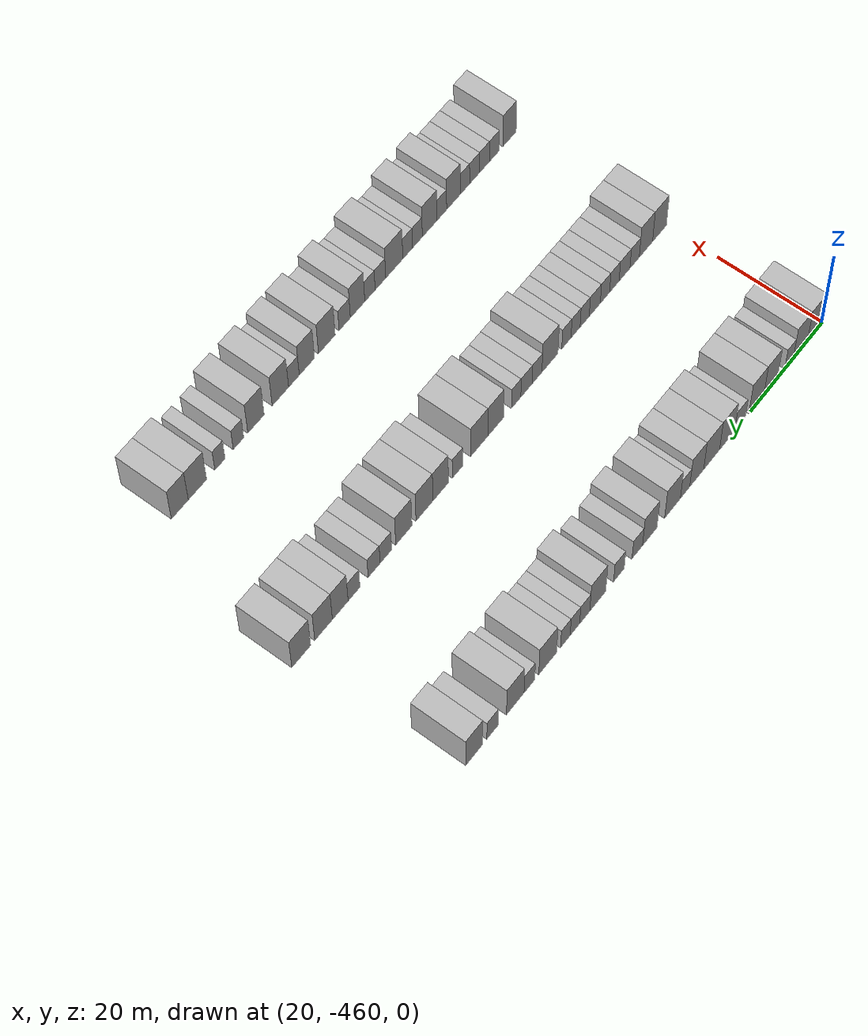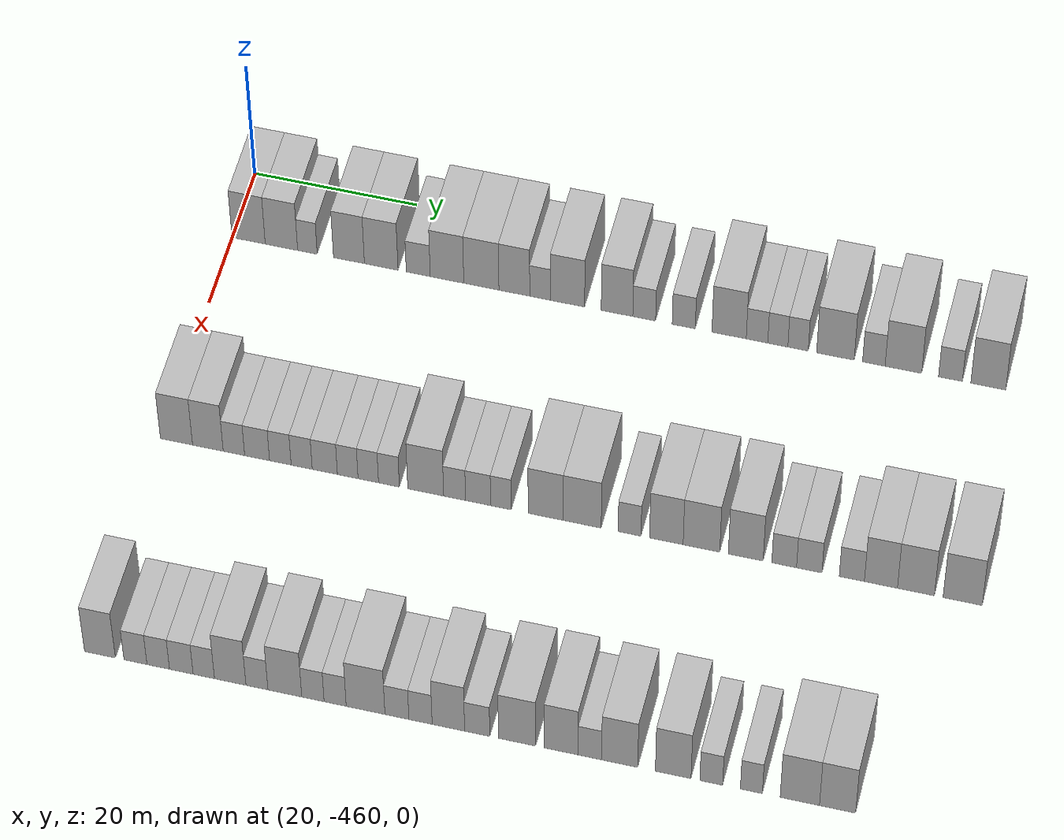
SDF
<sdf version="1.6">
 <world name="default">
  <model name="building_1">
   <static>1</static>
   <pose>25.0000 -457.9565 0 0.000000 0.000000 0.000000</pose>
   <link name="link">
    <pose>0 0 4.50 0 0 0</pose>
    <collision name="collision"><geometry><box><size>10.0000 4.0869 9.0000</size></box></geometry></collision>
    <visual name="visual">
     <cast_shadows>0</cast_shadows>
     <geometry><box><size>10.0000 4.0869 9.0000</size></box></geometry>
     <material>
      <script>
       <uri>model://HANNAS_wall/materials/scripts</uri>
       <uri>model://HANNAS_wall/materials/textures</uri>
       <name>vrc/HANNAS_wall</name>
      </script>
     </material>
    </visual>
   </link>
  </model>
  <model name="building_2">
   <static>1</static>
   <pose>25.0000 -453.9187 0 0.000000 0.000000 0.000000</pose>
   <link name="link">
    <pose>0 0 4.50 0 0 0</pose>
    <collision name="collision"><geometry><box><size>10.0000 3.9887 9.0000</size></box></geometry></collision>
    <visual name="visual">
     <cast_shadows>0</cast_shadows>
     <geometry><box><size>10.0000 3.9887 9.0000</size></box></geometry>
     <material>
      <script>
       <uri>model://HANNAS_wall/materials/scripts</uri>
       <uri>model://HANNAS_wall/materials/textures</uri>
       <name>vrc/HANNAS_wall</name>
      </script>
     </material>
    </visual>
   </link>
  </model>
  <model name="building_3">
   <static>1</static>
   <pose>25.0000 -450.7222 0 0.000000 0.000000 0.000000</pose>
   <link name="link">
    <pose>0 0 3.00 0 0 0</pose>
    <collision name="collision"><geometry><box><size>10.0000 2.4043 6.0000</size></box></geometry></collision>
    <visual name="visual">
     <cast_shadows>0</cast_shadows>
     <geometry><box><size>10.0000 2.4043 6.0000</size></box></geometry>
     <material>
      <script>
       <uri>model://HANNAS_wall/materials/scripts</uri>
       <uri>model://HANNAS_wall/materials/textures</uri>
       <name>vrc/HANNAS_wall</name>
      </script>
     </material>
    </visual>
   </link>
  </model>
  <model name="building_4">
   <static>1</static>
   <pose>25.0000 -445.6265 0 0.000000 0.000000 0.000000</pose>
   <link name="link">
    <pose>0 0 4.50 0 0 0</pose>
    <collision name="collision"><geometry><box><size>10.0000 3.7871 9.0000</size></box></geometry></collision>
    <visual name="visual">
     <cast_shadows>0</cast_shadows>
     <geometry><box><size>10.0000 3.7871 9.0000</size></box></geometry>
     <material>
      <script>
       <uri>model://HANNAS_wall/materials/scripts</uri>
       <uri>model://HANNAS_wall/materials/textures</uri>
       <name>vrc/HANNAS_wall</name>
      </script>
     </material>
    </visual>
   </link>
  </model>
  <model name="building_5">
   <static>1</static>
   <pose>25.0000 -441.6758 0 0.000000 0.000000 0.000000</pose>
   <link name="link">
    <pose>0 0 4.50 0 0 0</pose>
    <collision name="collision"><geometry><box><size>10.0000 4.1142 9.0000</size></box></geometry></collision>
    <visual name="visual">
     <cast_shadows>0</cast_shadows>
     <geometry><box><size>10.0000 4.1142 9.0000</size></box></geometry>
     <material>
      <script>
       <uri>model://HANNAS_wall/materials/scripts</uri>
       <uri>model://HANNAS_wall/materials/textures</uri>
       <name>vrc/HANNAS_wall</name>
      </script>
     </material>
    </visual>
   </link>
  </model>
  <model name="building_6">
   <static>1</static>
   <pose>25.0000 -437.1533 0 0.000000 0.000000 0.000000</pose>
   <link name="link">
    <pose>0 0 3.00 0 0 0</pose>
    <collision name="collision"><geometry><box><size>10.0000 2.9308 6.0000</size></box></geometry></collision>
    <visual name="visual">
     <cast_shadows>0</cast_shadows>
     <geometry><box><size>10.0000 2.9308 6.0000</size></box></geometry>
     <material>
      <script>
       <uri>model://HANNAS_wall/materials/scripts</uri>
       <uri>model://HANNAS_wall/materials/textures</uri>
       <name>vrc/HANNAS_wall</name>
      </script>
     </material>
    </visual>
   </link>
  </model>
  <model name="building_7">
   <static>1</static>
   <pose>25.0000 -433.6449 0 0.000000 0.000000 0.000000</pose>
   <link name="link">
    <pose>0 0 4.50 0 0 0</pose>
    <collision name="collision"><geometry><box><size>10.0000 4.0860 9.0000</size></box></geometry></collision>
    <visual name="visual">
     <cast_shadows>0</cast_shadows>
     <geometry><box><size>10.0000 4.0860 9.0000</size></box></geometry>
     <material>
      <script>
       <uri>model://HANNAS_wall/materials/scripts</uri>
       <uri>model://HANNAS_wall/materials/textures</uri>
       <name>vrc/HANNAS_wall</name>
      </script>
     </material>
    </visual>
   </link>
  </model>
  <model name="building_8">
   <static>1</static>
   <pose>25.0000 -429.4657 0 0.000000 0.000000 0.000000</pose>
   <link name="link">
    <pose>0 0 4.50 0 0 0</pose>
    <collision name="collision"><geometry><box><size>10.0000 4.2725 9.0000</size></box></geometry></collision>
    <visual name="visual">
     <cast_shadows>0</cast_shadows>
     <geometry><box><size>10.0000 4.2725 9.0000</size></box></geometry>
     <material>
      <script>
       <uri>model://HANNAS_wall/materials/scripts</uri>
       <uri>model://HANNAS_wall/materials/textures</uri>
       <name>vrc/HANNAS_wall</name>
      </script>
     </material>
    </visual>
   </link>
  </model>
  <model name="building_9">
   <static>1</static>
   <pose>25.0000 -425.4560 0 0.000000 0.000000 0.000000</pose>
   <link name="link">
    <pose>0 0 4.50 0 0 0</pose>
    <collision name="collision"><geometry><box><size>10.0000 3.7469 9.0000</size></box></geometry></collision>
    <visual name="visual">
     <cast_shadows>0</cast_shadows>
     <geometry><box><size>10.0000 3.7469 9.0000</size></box></geometry>
     <material>
      <script>
       <uri>model://HANNAS_wall/materials/scripts</uri>
       <uri>model://HANNAS_wall/materials/textures</uri>
       <name>vrc/HANNAS_wall</name>
      </script>
     </material>
    </visual>
   </link>
  </model>
  <model name="building_10">
   <static>1</static>
   <pose>25.0000 -422.3376 0 0.000000 0.000000 0.000000</pose>
   <link name="link">
    <pose>0 0 3.00 0 0 0</pose>
    <collision name="collision"><geometry><box><size>10.0000 2.4900 6.0000</size></box></geometry></collision>
    <visual name="visual">
     <cast_shadows>0</cast_shadows>
     <geometry><box><size>10.0000 2.4900 6.0000</size></box></geometry>
     <material>
      <script>
       <uri>model://HANNAS_wall/materials/scripts</uri>
       <uri>model://HANNAS_wall/materials/textures</uri>
       <name>vrc/HANNAS_wall</name>
      </script>
     </material>
    </visual>
   </link>
  </model>
  <model name="building_11">
   <static>1</static>
   <pose>25.0000 -419.0158 0 0.000000 0.000000 0.000000</pose>
   <link name="link">
    <pose>0 0 4.50 0 0 0</pose>
    <collision name="collision"><geometry><box><size>10.0000 4.1535 9.0000</size></box></geometry></collision>
    <visual name="visual">
     <cast_shadows>0</cast_shadows>
     <geometry><box><size>10.0000 4.1535 9.0000</size></box></geometry>
     <material>
      <script>
       <uri>model://HANNAS_wall/materials/scripts</uri>
       <uri>model://HANNAS_wall/materials/textures</uri>
       <name>vrc/HANNAS_wall</name>
      </script>
     </material>
    </visual>
   </link>
  </model>
  <model name="building_12">
   <static>1</static>
   <pose>25.0000 -413.0321 0 0.000000 0.000000 0.000000</pose>
   <link name="link">
    <pose>0 0 4.50 0 0 0</pose>
    <collision name="collision"><geometry><box><size>10.0000 3.8138 9.0000</size></box></geometry></collision>
    <visual name="visual">
     <cast_shadows>0</cast_shadows>
     <geometry><box><size>10.0000 3.8138 9.0000</size></box></geometry>
     <material>
      <script>
       <uri>model://HANNAS_wall/materials/scripts</uri>
       <uri>model://HANNAS_wall/materials/textures</uri>
       <name>vrc/HANNAS_wall</name>
      </script>
     </material>
    </visual>
   </link>
  </model>
  <model name="building_13">
   <static>1</static>
   <pose>25.0000 -409.7524 0 0.000000 0.000000 0.000000</pose>
   <link name="link">
    <pose>0 0 3.00 0 0 0</pose>
    <collision name="collision"><geometry><box><size>10.0000 2.7457 6.0000</size></box></geometry></collision>
    <visual name="visual">
     <cast_shadows>0</cast_shadows>
     <geometry><box><size>10.0000 2.7457 6.0000</size></box></geometry>
     <material>
      <script>
       <uri>model://HANNAS_wall/materials/scripts</uri>
       <uri>model://HANNAS_wall/materials/textures</uri>
       <name>vrc/HANNAS_wall</name>
      </script>
     </material>
    </visual>
   </link>
  </model>
  <model name="building_14">
   <static>1</static>
   <pose>25.0000 -404.9917 0 0.000000 0.000000 0.000000</pose>
   <link name="link">
    <pose>0 0 3.00 0 0 0</pose>
    <collision name="collision"><geometry><box><size>10.0000 2.7756 6.0000</size></box></geometry></collision>
    <visual name="visual">
     <cast_shadows>0</cast_shadows>
     <geometry><box><size>10.0000 2.7756 6.0000</size></box></geometry>
     <material>
      <script>
       <uri>model://HANNAS_wall/materials/scripts</uri>
       <uri>model://HANNAS_wall/materials/textures</uri>
       <name>vrc/HANNAS_wall</name>
      </script>
     </material>
    </visual>
   </link>
  </model>
  <model name="building_15">
   <static>1</static>
   <pose>25.0000 -399.5481 0 0.000000 0.000000 0.000000</pose>
   <link name="link">
    <pose>0 0 4.50 0 0 0</pose>
    <collision name="collision"><geometry><box><size>10.0000 4.1117 9.0000</size></box></geometry></collision>
    <visual name="visual">
     <cast_shadows>0</cast_shadows>
     <geometry><box><size>10.0000 4.1117 9.0000</size></box></geometry>
     <material>
      <script>
       <uri>model://HANNAS_wall/materials/scripts</uri>
       <uri>model://HANNAS_wall/materials/textures</uri>
       <name>vrc/HANNAS_wall</name>
      </script>
     </material>
    </visual>
   </link>
  </model>
  <model name="building_16">
   <static>1</static>
   <pose>25.0000 -396.2033 0 0.000000 0.000000 0.000000</pose>
   <link name="link">
    <pose>0 0 3.00 0 0 0</pose>
    <collision name="collision"><geometry><box><size>10.0000 2.5780 6.0000</size></box></geometry></collision>
    <visual name="visual">
     <cast_shadows>0</cast_shadows>
     <geometry><box><size>10.0000 2.5780 6.0000</size></box></geometry>
     <material>
      <script>
       <uri>model://HANNAS_wall/materials/scripts</uri>
       <uri>model://HANNAS_wall/materials/textures</uri>
       <name>vrc/HANNAS_wall</name>
      </script>
     </material>
    </visual>
   </link>
  </model>
  <model name="building_17">
   <static>1</static>
   <pose>25.0000 -393.7112 0 0.000000 0.000000 0.000000</pose>
   <link name="link">
    <pose>0 0 3.00 0 0 0</pose>
    <collision name="collision"><geometry><box><size>10.0000 2.4061 6.0000</size></box></geometry></collision>
    <visual name="visual">
     <cast_shadows>0</cast_shadows>
     <geometry><box><size>10.0000 2.4061 6.0000</size></box></geometry>
     <material>
      <script>
       <uri>model://HANNAS_wall/materials/scripts</uri>
       <uri>model://HANNAS_wall/materials/textures</uri>
       <name>vrc/HANNAS_wall</name>
      </script>
     </material>
    </visual>
   </link>
  </model>
  <model name="building_18">
   <static>1</static>
   <pose>25.0000 -391.2906 0 0.000000 0.000000 0.000000</pose>
   <link name="link">
    <pose>0 0 3.00 0 0 0</pose>
    <collision name="collision"><geometry><box><size>10.0000 2.4353 6.0000</size></box></geometry></collision>
    <visual name="visual">
     <cast_shadows>0</cast_shadows>
     <geometry><box><size>10.0000 2.4353 6.0000</size></box></geometry>
     <material>
      <script>
       <uri>model://HANNAS_wall/materials/scripts</uri>
       <uri>model://HANNAS_wall/materials/textures</uri>
       <name>vrc/HANNAS_wall</name>
      </script>
     </material>
    </visual>
   </link>
  </model>
  <model name="building_19">
   <static>1</static>
   <pose>25.0000 -386.8336 0 0.000000 0.000000 0.000000</pose>
   <link name="link">
    <pose>0 0 4.50 0 0 0</pose>
    <collision name="collision"><geometry><box><size>10.0000 4.4787 9.0000</size></box></geometry></collision>
    <visual name="visual">
     <cast_shadows>0</cast_shadows>
     <geometry><box><size>10.0000 4.4787 9.0000</size></box></geometry>
     <material>
      <script>
       <uri>model://HANNAS_wall/materials/scripts</uri>
       <uri>model://HANNAS_wall/materials/textures</uri>
       <name>vrc/HANNAS_wall</name>
      </script>
     </material>
    </visual>
   </link>
  </model>
  <model name="building_20">
   <static>1</static>
   <pose>25.0000 -382.2554 0 0.000000 0.000000 0.000000</pose>
   <link name="link">
    <pose>0 0 3.00 0 0 0</pose>
    <collision name="collision"><geometry><box><size>10.0000 2.6776 6.0000</size></box></geometry></collision>
    <visual name="visual">
     <cast_shadows>0</cast_shadows>
     <geometry><box><size>10.0000 2.6776 6.0000</size></box></geometry>
     <material>
      <script>
       <uri>model://HANNAS_wall/materials/scripts</uri>
       <uri>model://HANNAS_wall/materials/textures</uri>
       <name>vrc/HANNAS_wall</name>
      </script>
     </material>
    </visual>
   </link>
  </model>
  <model name="building_21">
   <static>1</static>
   <pose>25.0000 -378.7441 0 0.000000 0.000000 0.000000</pose>
   <link name="link">
    <pose>0 0 4.50 0 0 0</pose>
    <collision name="collision"><geometry><box><size>10.0000 4.3449 9.0000</size></box></geometry></collision>
    <visual name="visual">
     <cast_shadows>0</cast_shadows>
     <geometry><box><size>10.0000 4.3449 9.0000</size></box></geometry>
     <material>
      <script>
       <uri>model://HANNAS_wall/materials/scripts</uri>
       <uri>model://HANNAS_wall/materials/textures</uri>
       <name>vrc/HANNAS_wall</name>
      </script>
     </material>
    </visual>
   </link>
  </model>
  <model name="building_22">
   <static>1</static>
   <pose>25.0000 -373.1597 0 0.000000 0.000000 0.000000</pose>
   <link name="link">
    <pose>0 0 3.00 0 0 0</pose>
    <collision name="collision"><geometry><box><size>10.0000 2.8239 6.0000</size></box></geometry></collision>
    <visual name="visual">
     <cast_shadows>0</cast_shadows>
     <geometry><box><size>10.0000 2.8239 6.0000</size></box></geometry>
     <material>
      <script>
       <uri>model://HANNAS_wall/materials/scripts</uri>
       <uri>model://HANNAS_wall/materials/textures</uri>
       <name>vrc/HANNAS_wall</name>
      </script>
     </material>
    </visual>
   </link>
  </model>
  <model name="building_23">
   <static>1</static>
   <pose>25.0000 -368.6854 0 0.000000 0.000000 0.000000</pose>
   <link name="link">
    <pose>0 0 4.50 0 0 0</pose>
    <collision name="collision"><geometry><box><size>10.0000 4.1246 9.0000</size></box></geometry></collision>
    <visual name="visual">
     <cast_shadows>0</cast_shadows>
     <geometry><box><size>10.0000 4.1246 9.0000</size></box></geometry>
     <material>
      <script>
       <uri>model://HANNAS_wall/materials/scripts</uri>
       <uri>model://HANNAS_wall/materials/textures</uri>
       <name>vrc/HANNAS_wall</name>
      </script>
     </material>
    </visual>
   </link>
  </model>
  <model name="building_226">
   <static>1</static>
   <pose>55.0000 -458.0733 0 0.000000 0.000000 0.000000</pose>
   <link name="link">
    <pose>0 0 4.50 0 0 0</pose>
    <collision name="collision"><geometry><box><size>10.0000 3.8534 9.0000</size></box></geometry></collision>
    <visual name="visual">
     <cast_shadows>0</cast_shadows>
     <geometry><box><size>10.0000 3.8534 9.0000</size></box></geometry>
     <material>
      <script>
       <uri>model://HANNAS_wall/materials/scripts</uri>
       <uri>model://HANNAS_wall/materials/textures</uri>
       <name>vrc/HANNAS_wall</name>
      </script>
     </material>
    </visual>
   </link>
  </model>
  <model name="building_227">
   <static>1</static>
   <pose>55.0000 -454.3107 0 0.000000 0.000000 0.000000</pose>
   <link name="link">
    <pose>0 0 4.50 0 0 0</pose>
    <collision name="collision"><geometry><box><size>10.0000 3.6719 9.0000</size></box></geometry></collision>
    <visual name="visual">
     <cast_shadows>0</cast_shadows>
     <geometry><box><size>10.0000 3.6719 9.0000</size></box></geometry>
     <material>
      <script>
       <uri>model://HANNAS_wall/materials/scripts</uri>
       <uri>model://HANNAS_wall/materials/textures</uri>
       <name>vrc/HANNAS_wall</name>
      </script>
     </material>
    </visual>
   </link>
  </model>
  <model name="building_228">
   <static>1</static>
   <pose>55.0000 -451.1913 0 0.000000 0.000000 0.000000</pose>
   <link name="link">
    <pose>0 0 3.00 0 0 0</pose>
    <collision name="collision"><geometry><box><size>10.0000 2.5669 6.0000</size></box></geometry></collision>
    <visual name="visual">
     <cast_shadows>0</cast_shadows>
     <geometry><box><size>10.0000 2.5669 6.0000</size></box></geometry>
     <material>
      <script>
       <uri>model://HANNAS_wall/materials/scripts</uri>
       <uri>model://HANNAS_wall/materials/textures</uri>
       <name>vrc/HANNAS_wall</name>
      </script>
     </material>
    </visual>
   </link>
  </model>
  <model name="building_229">
   <static>1</static>
   <pose>55.0000 -448.4231 0 0.000000 0.000000 0.000000</pose>
   <link name="link">
    <pose>0 0 3.00 0 0 0</pose>
    <collision name="collision"><geometry><box><size>10.0000 2.9695 6.0000</size></box></geometry></collision>
    <visual name="visual">
     <cast_shadows>0</cast_shadows>
     <geometry><box><size>10.0000 2.9695 6.0000</size></box></geometry>
     <material>
      <script>
       <uri>model://HANNAS_wall/materials/scripts</uri>
       <uri>model://HANNAS_wall/materials/textures</uri>
       <name>vrc/HANNAS_wall</name>
      </script>
     </material>
    </visual>
   </link>
  </model>
  <model name="building_230">
   <static>1</static>
   <pose>55.0000 -445.6499 0 0.000000 0.000000 0.000000</pose>
   <link name="link">
    <pose>0 0 3.00 0 0 0</pose>
    <collision name="collision"><geometry><box><size>10.0000 2.5768 6.0000</size></box></geometry></collision>
    <visual name="visual">
     <cast_shadows>0</cast_shadows>
     <geometry><box><size>10.0000 2.5768 6.0000</size></box></geometry>
     <material>
      <script>
       <uri>model://HANNAS_wall/materials/scripts</uri>
       <uri>model://HANNAS_wall/materials/textures</uri>
       <name>vrc/HANNAS_wall</name>
      </script>
     </material>
    </visual>
   </link>
  </model>
  <model name="building_231">
   <static>1</static>
   <pose>55.0000 -443.1044 0 0.000000 0.000000 0.000000</pose>
   <link name="link">
    <pose>0 0 3.00 0 0 0</pose>
    <collision name="collision"><geometry><box><size>10.0000 2.5143 6.0000</size></box></geometry></collision>
    <visual name="visual">
     <cast_shadows>0</cast_shadows>
     <geometry><box><size>10.0000 2.5143 6.0000</size></box></geometry>
     <material>
      <script>
       <uri>model://HANNAS_wall/materials/scripts</uri>
       <uri>model://HANNAS_wall/materials/textures</uri>
       <name>vrc/HANNAS_wall</name>
      </script>
     </material>
    </visual>
   </link>
  </model>
  <model name="building_232">
   <static>1</static>
   <pose>55.0000 -440.3504 0 0.000000 0.000000 0.000000</pose>
   <link name="link">
    <pose>0 0 3.00 0 0 0</pose>
    <collision name="collision"><geometry><box><size>10.0000 2.9935 6.0000</size></box></geometry></collision>
    <visual name="visual">
     <cast_shadows>0</cast_shadows>
     <geometry><box><size>10.0000 2.9935 6.0000</size></box></geometry>
     <material>
      <script>
       <uri>model://HANNAS_wall/materials/scripts</uri>
       <uri>model://HANNAS_wall/materials/textures</uri>
       <name>vrc/HANNAS_wall</name>
      </script>
     </material>
    </visual>
   </link>
  </model>
  <model name="building_233">
   <static>1</static>
   <pose>55.0000 -437.6263 0 0.000000 0.000000 0.000000</pose>
   <link name="link">
    <pose>0 0 3.00 0 0 0</pose>
    <collision name="collision"><geometry><box><size>10.0000 2.4548 6.0000</size></box></geometry></collision>
    <visual name="visual">
     <cast_shadows>0</cast_shadows>
     <geometry><box><size>10.0000 2.4548 6.0000</size></box></geometry>
     <material>
      <script>
       <uri>model://HANNAS_wall/materials/scripts</uri>
       <uri>model://HANNAS_wall/materials/textures</uri>
       <name>vrc/HANNAS_wall</name>
      </script>
     </material>
    </visual>
   </link>
  </model>
  <model name="building_234">
   <static>1</static>
   <pose>55.0000 -435.1843 0 0.000000 0.000000 0.000000</pose>
   <link name="link">
    <pose>0 0 3.00 0 0 0</pose>
    <collision name="collision"><geometry><box><size>10.0000 2.4290 6.0000</size></box></geometry></collision>
    <visual name="visual">
     <cast_shadows>0</cast_shadows>
     <geometry><box><size>10.0000 2.4290 6.0000</size></box></geometry>
     <material>
      <script>
       <uri>model://HANNAS_wall/materials/scripts</uri>
       <uri>model://HANNAS_wall/materials/textures</uri>
       <name>vrc/HANNAS_wall</name>
      </script>
     </material>
    </visual>
   </link>
  </model>
  <model name="building_235">
   <static>1</static>
   <pose>55.0000 -432.7343 0 0.000000 0.000000 0.000000</pose>
   <link name="link">
    <pose>0 0 3.00 0 0 0</pose>
    <collision name="collision"><geometry><box><size>10.0000 2.4711 6.0000</size></box></geometry></collision>
    <visual name="visual">
     <cast_shadows>0</cast_shadows>
     <geometry><box><size>10.0000 2.4711 6.0000</size></box></geometry>
     <material>
      <script>
       <uri>model://HANNAS_wall/materials/scripts</uri>
       <uri>model://HANNAS_wall/materials/textures</uri>
       <name>vrc/HANNAS_wall</name>
      </script>
     </material>
    </visual>
   </link>
  </model>
  <model name="building_236">
   <static>1</static>
   <pose>55.0000 -428.3742 0 0.000000 0.000000 0.000000</pose>
   <link name="link">
    <pose>0 0 4.50 0 0 0</pose>
    <collision name="collision"><geometry><box><size>10.0000 4.2491 9.0000</size></box></geometry></collision>
    <visual name="visual">
     <cast_shadows>0</cast_shadows>
     <geometry><box><size>10.0000 4.2491 9.0000</size></box></geometry>
     <material>
      <script>
       <uri>model://HANNAS_wall/materials/scripts</uri>
       <uri>model://HANNAS_wall/materials/textures</uri>
       <name>vrc/HANNAS_wall</name>
      </script>
     </material>
    </visual>
   </link>
  </model>
  <model name="building_237">
   <static>1</static>
   <pose>55.0000 -424.9546 0 0.000000 0.000000 0.000000</pose>
   <link name="link">
    <pose>0 0 3.00 0 0 0</pose>
    <collision name="collision"><geometry><box><size>10.0000 2.5901 6.0000</size></box></geometry></collision>
    <visual name="visual">
     <cast_shadows>0</cast_shadows>
     <geometry><box><size>10.0000 2.5901 6.0000</size></box></geometry>
     <material>
      <script>
       <uri>model://HANNAS_wall/materials/scripts</uri>
       <uri>model://HANNAS_wall/materials/textures</uri>
       <name>vrc/HANNAS_wall</name>
      </script>
     </material>
    </visual>
   </link>
  </model>
  <model name="building_238">
   <static>1</static>
   <pose>55.0000 -422.1781 0 0.000000 0.000000 0.000000</pose>
   <link name="link">
    <pose>0 0 3.00 0 0 0</pose>
    <collision name="collision"><geometry><box><size>10.0000 2.9629 6.0000</size></box></geometry></collision>
    <visual name="visual">
     <cast_shadows>0</cast_shadows>
     <geometry><box><size>10.0000 2.9629 6.0000</size></box></geometry>
     <material>
      <script>
       <uri>model://HANNAS_wall/materials/scripts</uri>
       <uri>model://HANNAS_wall/materials/textures</uri>
       <name>vrc/HANNAS_wall</name>
      </script>
     </material>
    </visual>
   </link>
  </model>
  <model name="building_239">
   <static>1</static>
   <pose>55.0000 -419.4860 0 0.000000 0.000000 0.000000</pose>
   <link name="link">
    <pose>0 0 3.00 0 0 0</pose>
    <collision name="collision"><geometry><box><size>10.0000 2.4213 6.0000</size></box></geometry></collision>
    <visual name="visual">
     <cast_shadows>0</cast_shadows>
     <geometry><box><size>10.0000 2.4213 6.0000</size></box></geometry>
     <material>
      <script>
       <uri>model://HANNAS_wall/materials/scripts</uri>
       <uri>model://HANNAS_wall/materials/textures</uri>
       <name>vrc/HANNAS_wall</name>
      </script>
     </material>
    </visual>
   </link>
  </model>
  <model name="building_240">
   <static>1</static>
   <pose>55.0000 -414.2110 0 0.000000 0.000000 0.000000</pose>
   <link name="link">
    <pose>0 0 4.50 0 0 0</pose>
    <collision name="collision"><geometry><box><size>10.0000 4.1287 9.0000</size></box></geometry></collision>
    <visual name="visual">
     <cast_shadows>0</cast_shadows>
     <geometry><box><size>10.0000 4.1287 9.0000</size></box></geometry>
     <material>
      <script>
       <uri>model://HANNAS_wall/materials/scripts</uri>
       <uri>model://HANNAS_wall/materials/textures</uri>
       <name>vrc/HANNAS_wall</name>
      </script>
     </material>
    </visual>
   </link>
  </model>
  <model name="building_241">
   <static>1</static>
   <pose>55.0000 -409.9313 0 0.000000 0.000000 0.000000</pose>
   <link name="link">
    <pose>0 0 4.50 0 0 0</pose>
    <collision name="collision"><geometry><box><size>10.0000 4.4307 9.0000</size></box></geometry></collision>
    <visual name="visual">
     <cast_shadows>0</cast_shadows>
     <geometry><box><size>10.0000 4.4307 9.0000</size></box></geometry>
     <material>
      <script>
       <uri>model://HANNAS_wall/materials/scripts</uri>
       <uri>model://HANNAS_wall/materials/textures</uri>
       <name>vrc/HANNAS_wall</name>
      </script>
     </material>
    </visual>
   </link>
  </model>
  <model name="building_242">
   <static>1</static>
   <pose>55.0000 -404.3843 0 0.000000 0.000000 0.000000</pose>
   <link name="link">
    <pose>0 0 3.00 0 0 0</pose>
    <collision name="collision"><geometry><box><size>10.0000 2.6633 6.0000</size></box></geometry></collision>
    <visual name="visual">
     <cast_shadows>0</cast_shadows>
     <geometry><box><size>10.0000 2.6633 6.0000</size></box></geometry>
     <material>
      <script>
       <uri>model://HANNAS_wall/materials/scripts</uri>
       <uri>model://HANNAS_wall/materials/textures</uri>
       <name>vrc/HANNAS_wall</name>
      </script>
     </material>
    </visual>
   </link>
  </model>
  <model name="building_243">
   <static>1</static>
   <pose>55.0000 -400.0969 0 0.000000 0.000000 0.000000</pose>
   <link name="link">
    <pose>0 0 4.50 0 0 0</pose>
    <collision name="collision"><geometry><box><size>10.0000 3.9116 9.0000</size></box></geometry></collision>
    <visual name="visual">
     <cast_shadows>0</cast_shadows>
     <geometry><box><size>10.0000 3.9116 9.0000</size></box></geometry>
     <material>
      <script>
       <uri>model://HANNAS_wall/materials/scripts</uri>
       <uri>model://HANNAS_wall/materials/textures</uri>
       <name>vrc/HANNAS_wall</name>
      </script>
     </material>
    </visual>
   </link>
  </model>
  <model name="building_244">
   <static>1</static>
   <pose>55.0000 -396.0045 0 0.000000 0.000000 0.000000</pose>
   <link name="link">
    <pose>0 0 4.50 0 0 0</pose>
    <collision name="collision"><geometry><box><size>10.0000 4.2732 9.0000</size></box></geometry></collision>
    <visual name="visual">
     <cast_shadows>0</cast_shadows>
     <geometry><box><size>10.0000 4.2732 9.0000</size></box></geometry>
     <material>
      <script>
       <uri>model://HANNAS_wall/materials/scripts</uri>
       <uri>model://HANNAS_wall/materials/textures</uri>
       <name>vrc/HANNAS_wall</name>
      </script>
     </material>
    </visual>
   </link>
  </model>
  <model name="building_245">
   <static>1</static>
   <pose>55.0000 -390.8450 0 0.000000 0.000000 0.000000</pose>
   <link name="link">
    <pose>0 0 4.50 0 0 0</pose>
    <collision name="collision"><geometry><box><size>10.0000 4.0458 9.0000</size></box></geometry></collision>
    <visual name="visual">
     <cast_shadows>0</cast_shadows>
     <geometry><box><size>10.0000 4.0458 9.0000</size></box></geometry>
     <material>
      <script>
       <uri>model://HANNAS_wall/materials/scripts</uri>
       <uri>model://HANNAS_wall/materials/textures</uri>
       <name>vrc/HANNAS_wall</name>
      </script>
     </material>
    </visual>
   </link>
  </model>
  <model name="building_246">
   <static>1</static>
   <pose>55.0000 -386.3871 0 0.000000 0.000000 0.000000</pose>
   <link name="link">
    <pose>0 0 3.00 0 0 0</pose>
    <collision name="collision"><geometry><box><size>10.0000 2.8699 6.0000</size></box></geometry></collision>
    <visual name="visual">
     <cast_shadows>0</cast_shadows>
     <geometry><box><size>10.0000 2.8699 6.0000</size></box></geometry>
     <material>
      <script>
       <uri>model://HANNAS_wall/materials/scripts</uri>
       <uri>model://HANNAS_wall/materials/textures</uri>
       <name>vrc/HANNAS_wall</name>
      </script>
     </material>
    </visual>
   </link>
  </model>
  <model name="building_247">
   <static>1</static>
   <pose>55.0000 -383.4796 0 0.000000 0.000000 0.000000</pose>
   <link name="link">
    <pose>0 0 3.00 0 0 0</pose>
    <collision name="collision"><geometry><box><size>10.0000 2.9453 6.0000</size></box></geometry></collision>
    <visual name="visual">
     <cast_shadows>0</cast_shadows>
     <geometry><box><size>10.0000 2.9453 6.0000</size></box></geometry>
     <material>
      <script>
       <uri>model://HANNAS_wall/materials/scripts</uri>
       <uri>model://HANNAS_wall/materials/textures</uri>
       <name>vrc/HANNAS_wall</name>
      </script>
     </material>
    </visual>
   </link>
  </model>
  <model name="building_248">
   <static>1</static>
   <pose>55.0000 -378.5569 0 0.000000 0.000000 0.000000</pose>
   <link name="link">
    <pose>0 0 3.00 0 0 0</pose>
    <collision name="collision"><geometry><box><size>10.0000 2.8999 6.0000</size></box></geometry></collision>
    <visual name="visual">
     <cast_shadows>0</cast_shadows>
     <geometry><box><size>10.0000 2.8999 6.0000</size></box></geometry>
     <material>
      <script>
       <uri>model://HANNAS_wall/materials/scripts</uri>
       <uri>model://HANNAS_wall/materials/textures</uri>
       <name>vrc/HANNAS_wall</name>
      </script>
     </material>
    </visual>
   </link>
  </model>
  <model name="building_249">
   <static>1</static>
   <pose>55.0000 -375.1997 0 0.000000 0.000000 0.000000</pose>
   <link name="link">
    <pose>0 0 4.50 0 0 0</pose>
    <collision name="collision"><geometry><box><size>10.0000 3.8145 9.0000</size></box></geometry></collision>
    <visual name="visual">
     <cast_shadows>0</cast_shadows>
     <geometry><box><size>10.0000 3.8145 9.0000</size></box></geometry>
     <material>
      <script>
       <uri>model://HANNAS_wall/materials/scripts</uri>
       <uri>model://HANNAS_wall/materials/textures</uri>
       <name>vrc/HANNAS_wall</name>
      </script>
     </material>
    </visual>
   </link>
  </model>
  <model name="building_250">
   <static>1</static>
   <pose>55.0000 -371.1647 0 0.000000 0.000000 0.000000</pose>
   <link name="link">
    <pose>0 0 4.50 0 0 0</pose>
    <collision name="collision"><geometry><box><size>10.0000 4.2555 9.0000</size></box></geometry></collision>
    <visual name="visual">
     <cast_shadows>0</cast_shadows>
     <geometry><box><size>10.0000 4.2555 9.0000</size></box></geometry>
     <material>
      <script>
       <uri>model://HANNAS_wall/materials/scripts</uri>
       <uri>model://HANNAS_wall/materials/textures</uri>
       <name>vrc/HANNAS_wall</name>
      </script>
     </material>
    </visual>
   </link>
  </model>
  <model name="building_251">
   <static>1</static>
   <pose>55.0000 -365.7893 0 0.000000 0.000000 0.000000</pose>
   <link name="link">
    <pose>0 0 4.50 0 0 0</pose>
    <collision name="collision"><geometry><box><size>10.0000 4.4954 9.0000</size></box></geometry></collision>
    <visual name="visual">
     <cast_shadows>0</cast_shadows>
     <geometry><box><size>10.0000 4.4954 9.0000</size></box></geometry>
     <material>
      <script>
       <uri>model://HANNAS_wall/materials/scripts</uri>
       <uri>model://HANNAS_wall/materials/textures</uri>
       <name>vrc/HANNAS_wall</name>
      </script>
     </material>
    </visual>
   </link>
  </model>
  <model name="building_462">
   <static>1</static>
   <pose>85.0000 -458.1998 0 0.000000 0.000000 0.000000</pose>
   <link name="link">
    <pose>0 0 4.50 0 0 0</pose>
    <collision name="collision"><geometry><box><size>10.0000 3.6004 9.0000</size></box></geometry></collision>
    <visual name="visual">
     <cast_shadows>0</cast_shadows>
     <geometry><box><size>10.0000 3.6004 9.0000</size></box></geometry>
     <material>
      <script>
       <uri>model://HANNAS_wall/materials/scripts</uri>
       <uri>model://HANNAS_wall/materials/textures</uri>
       <name>vrc/HANNAS_wall</name>
      </script>
     </material>
    </visual>
   </link>
  </model>
  <model name="building_463">
   <static>1</static>
   <pose>85.0000 -454.0630 0 0.000000 0.000000 0.000000</pose>
   <link name="link">
    <pose>0 0 3.00 0 0 0</pose>
    <collision name="collision"><geometry><box><size>10.0000 2.6732 6.0000</size></box></geometry></collision>
    <visual name="visual">
     <cast_shadows>0</cast_shadows>
     <geometry><box><size>10.0000 2.6732 6.0000</size></box></geometry>
     <material>
      <script>
       <uri>model://HANNAS_wall/materials/scripts</uri>
       <uri>model://HANNAS_wall/materials/textures</uri>
       <name>vrc/HANNAS_wall</name>
      </script>
     </material>
    </visual>
   </link>
  </model>
  <model name="building_464">
   <static>1</static>
   <pose>85.0000 -451.4125 0 0.000000 0.000000 0.000000</pose>
   <link name="link">
    <pose>0 0 3.00 0 0 0</pose>
    <collision name="collision"><geometry><box><size>10.0000 2.6278 6.0000</size></box></geometry></collision>
    <visual name="visual">
     <cast_shadows>0</cast_shadows>
     <geometry><box><size>10.0000 2.6278 6.0000</size></box></geometry>
     <material>
      <script>
       <uri>model://HANNAS_wall/materials/scripts</uri>
       <uri>model://HANNAS_wall/materials/textures</uri>
       <name>vrc/HANNAS_wall</name>
      </script>
     </material>
    </visual>
   </link>
  </model>
  <model name="building_465">
   <static>1</static>
   <pose>85.0000 -448.7271 0 0.000000 0.000000 0.000000</pose>
   <link name="link">
    <pose>0 0 3.00 0 0 0</pose>
    <collision name="collision"><geometry><box><size>10.0000 2.7429 6.0000</size></box></geometry></collision>
    <visual name="visual">
     <cast_shadows>0</cast_shadows>
     <geometry><box><size>10.0000 2.7429 6.0000</size></box></geometry>
     <material>
      <script>
       <uri>model://HANNAS_wall/materials/scripts</uri>
       <uri>model://HANNAS_wall/materials/textures</uri>
       <name>vrc/HANNAS_wall</name>
      </script>
     </material>
    </visual>
   </link>
  </model>
  <model name="building_466">
   <static>1</static>
   <pose>85.0000 -446.1151 0 0.000000 0.000000 0.000000</pose>
   <link name="link">
    <pose>0 0 3.00 0 0 0</pose>
    <collision name="collision"><geometry><box><size>10.0000 2.4812 6.0000</size></box></geometry></collision>
    <visual name="visual">
     <cast_shadows>0</cast_shadows>
     <geometry><box><size>10.0000 2.4812 6.0000</size></box></geometry>
     <material>
      <script>
       <uri>model://HANNAS_wall/materials/scripts</uri>
       <uri>model://HANNAS_wall/materials/textures</uri>
       <name>vrc/HANNAS_wall</name>
      </script>
     </material>
    </visual>
   </link>
  </model>
  <model name="building_467">
   <static>1</static>
   <pose>85.0000 -443.0499 0 0.000000 0.000000 0.000000</pose>
   <link name="link">
    <pose>0 0 4.50 0 0 0</pose>
    <collision name="collision"><geometry><box><size>10.0000 3.6492 9.0000</size></box></geometry></collision>
    <visual name="visual">
     <cast_shadows>0</cast_shadows>
     <geometry><box><size>10.0000 3.6492 9.0000</size></box></geometry>
     <material>
      <script>
       <uri>model://HANNAS_wall/materials/scripts</uri>
       <uri>model://HANNAS_wall/materials/textures</uri>
       <name>vrc/HANNAS_wall</name>
      </script>
     </material>
    </visual>
   </link>
  </model>
  <model name="building_468">
   <static>1</static>
   <pose>85.0000 -439.9516 0 0.000000 0.000000 0.000000</pose>
   <link name="link">
    <pose>0 0 3.00 0 0 0</pose>
    <collision name="collision"><geometry><box><size>10.0000 2.5475 6.0000</size></box></geometry></collision>
    <visual name="visual">
     <cast_shadows>0</cast_shadows>
     <geometry><box><size>10.0000 2.5475 6.0000</size></box></geometry>
     <material>
      <script>
       <uri>model://HANNAS_wall/materials/scripts</uri>
       <uri>model://HANNAS_wall/materials/textures</uri>
       <name>vrc/HANNAS_wall</name>
      </script>
     </material>
    </visual>
   </link>
  </model>
  <model name="building_469">
   <static>1</static>
   <pose>85.0000 -436.7239 0 0.000000 0.000000 0.000000</pose>
   <link name="link">
    <pose>0 0 4.50 0 0 0</pose>
    <collision name="collision"><geometry><box><size>10.0000 3.9078 9.0000</size></box></geometry></collision>
    <visual name="visual">
     <cast_shadows>0</cast_shadows>
     <geometry><box><size>10.0000 3.9078 9.0000</size></box></geometry>
     <material>
      <script>
       <uri>model://HANNAS_wall/materials/scripts</uri>
       <uri>model://HANNAS_wall/materials/textures</uri>
       <name>vrc/HANNAS_wall</name>
      </script>
     </material>
    </visual>
   </link>
  </model>
  <model name="building_470">
   <static>1</static>
   <pose>85.0000 -433.4820 0 0.000000 0.000000 0.000000</pose>
   <link name="link">
    <pose>0 0 3.00 0 0 0</pose>
    <collision name="collision"><geometry><box><size>10.0000 2.5761 6.0000</size></box></geometry></collision>
    <visual name="visual">
     <cast_shadows>0</cast_shadows>
     <geometry><box><size>10.0000 2.5761 6.0000</size></box></geometry>
     <material>
      <script>
       <uri>model://HANNAS_wall/materials/scripts</uri>
       <uri>model://HANNAS_wall/materials/textures</uri>
       <name>vrc/HANNAS_wall</name>
      </script>
     </material>
    </visual>
   </link>
  </model>
  <model name="building_471">
   <static>1</static>
   <pose>85.0000 -430.9207 0 0.000000 0.000000 0.000000</pose>
   <link name="link">
    <pose>0 0 3.00 0 0 0</pose>
    <collision name="collision"><geometry><box><size>10.0000 2.5464 6.0000</size></box></geometry></collision>
    <visual name="visual">
     <cast_shadows>0</cast_shadows>
     <geometry><box><size>10.0000 2.5464 6.0000</size></box></geometry>
     <material>
      <script>
       <uri>model://HANNAS_wall/materials/scripts</uri>
       <uri>model://HANNAS_wall/materials/textures</uri>
       <name>vrc/HANNAS_wall</name>
      </script>
     </material>
    </visual>
   </link>
  </model>
  <model name="building_472">
   <static>1</static>
   <pose>85.0000 -427.4198 0 0.000000 0.000000 0.000000</pose>
   <link name="link">
    <pose>0 0 4.50 0 0 0</pose>
    <collision name="collision"><geometry><box><size>10.0000 4.4556 9.0000</size></box></geometry></collision>
    <visual name="visual">
     <cast_shadows>0</cast_shadows>
     <geometry><box><size>10.0000 4.4556 9.0000</size></box></geometry>
     <material>
      <script>
       <uri>model://HANNAS_wall/materials/scripts</uri>
       <uri>model://HANNAS_wall/materials/textures</uri>
       <name>vrc/HANNAS_wall</name>
      </script>
     </material>
    </visual>
   </link>
  </model>
  <model name="building_473">
   <static>1</static>
   <pose>85.0000 -423.8171 0 0.000000 0.000000 0.000000</pose>
   <link name="link">
    <pose>0 0 3.00 0 0 0</pose>
    <collision name="collision"><geometry><box><size>10.0000 2.7496 6.0000</size></box></geometry></collision>
    <visual name="visual">
     <cast_shadows>0</cast_shadows>
     <geometry><box><size>10.0000 2.7496 6.0000</size></box></geometry>
     <material>
      <script>
       <uri>model://HANNAS_wall/materials/scripts</uri>
       <uri>model://HANNAS_wall/materials/textures</uri>
       <name>vrc/HANNAS_wall</name>
      </script>
     </material>
    </visual>
   </link>
  </model>
  <model name="building_474">
   <static>1</static>
   <pose>85.0000 -421.1066 0 0.000000 0.000000 0.000000</pose>
   <link name="link">
    <pose>0 0 3.00 0 0 0</pose>
    <collision name="collision"><geometry><box><size>10.0000 2.6715 6.0000</size></box></geometry></collision>
    <visual name="visual">
     <cast_shadows>0</cast_shadows>
     <geometry><box><size>10.0000 2.6715 6.0000</size></box></geometry>
     <material>
      <script>
       <uri>model://HANNAS_wall/materials/scripts</uri>
       <uri>model://HANNAS_wall/materials/textures</uri>
       <name>vrc/HANNAS_wall</name>
      </script>
     </material>
    </visual>
   </link>
  </model>
  <model name="building_475">
   <static>1</static>
   <pose>85.0000 -417.9099 0 0.000000 0.000000 0.000000</pose>
   <link name="link">
    <pose>0 0 4.50 0 0 0</pose>
    <collision name="collision"><geometry><box><size>10.0000 3.7219 9.0000</size></box></geometry></collision>
    <visual name="visual">
     <cast_shadows>0</cast_shadows>
     <geometry><box><size>10.0000 3.7219 9.0000</size></box></geometry>
     <material>
      <script>
       <uri>model://HANNAS_wall/materials/scripts</uri>
       <uri>model://HANNAS_wall/materials/textures</uri>
       <name>vrc/HANNAS_wall</name>
      </script>
     </material>
    </visual>
   </link>
  </model>
  <model name="building_476">
   <static>1</static>
   <pose>85.0000 -414.6105 0 0.000000 0.000000 0.000000</pose>
   <link name="link">
    <pose>0 0 3.00 0 0 0</pose>
    <collision name="collision"><geometry><box><size>10.0000 2.8768 6.0000</size></box></geometry></collision>
    <visual name="visual">
     <cast_shadows>0</cast_shadows>
     <geometry><box><size>10.0000 2.8768 6.0000</size></box></geometry>
     <material>
      <script>
       <uri>model://HANNAS_wall/materials/scripts</uri>
       <uri>model://HANNAS_wall/materials/textures</uri>
       <name>vrc/HANNAS_wall</name>
      </script>
     </material>
    </visual>
   </link>
  </model>
  <model name="building_477">
   <static>1</static>
   <pose>85.0000 -410.0563 0 0.000000 0.000000 0.000000</pose>
   <link name="link">
    <pose>0 0 4.50 0 0 0</pose>
    <collision name="collision"><geometry><box><size>10.0000 4.2317 9.0000</size></box></geometry></collision>
    <visual name="visual">
     <cast_shadows>0</cast_shadows>
     <geometry><box><size>10.0000 4.2317 9.0000</size></box></geometry>
     <material>
      <script>
       <uri>model://HANNAS_wall/materials/scripts</uri>
       <uri>model://HANNAS_wall/materials/textures</uri>
       <name>vrc/HANNAS_wall</name>
      </script>
     </material>
    </visual>
   </link>
  </model>
  <model name="building_478">
   <static>1</static>
   <pose>85.0000 -405.0220 0 0.000000 0.000000 0.000000</pose>
   <link name="link">
    <pose>0 0 4.50 0 0 0</pose>
    <collision name="collision"><geometry><box><size>10.0000 3.8367 9.0000</size></box></geometry></collision>
    <visual name="visual">
     <cast_shadows>0</cast_shadows>
     <geometry><box><size>10.0000 3.8367 9.0000</size></box></geometry>
     <material>
      <script>
       <uri>model://HANNAS_wall/materials/scripts</uri>
       <uri>model://HANNAS_wall/materials/textures</uri>
       <name>vrc/HANNAS_wall</name>
      </script>
     </material>
    </visual>
   </link>
  </model>
  <model name="building_479">
   <static>1</static>
   <pose>85.0000 -401.7690 0 0.000000 0.000000 0.000000</pose>
   <link name="link">
    <pose>0 0 3.00 0 0 0</pose>
    <collision name="collision"><geometry><box><size>10.0000 2.6693 6.0000</size></box></geometry></collision>
    <visual name="visual">
     <cast_shadows>0</cast_shadows>
     <geometry><box><size>10.0000 2.6693 6.0000</size></box></geometry>
     <material>
      <script>
       <uri>model://HANNAS_wall/materials/scripts</uri>
       <uri>model://HANNAS_wall/materials/textures</uri>
       <name>vrc/HANNAS_wall</name>
      </script>
     </material>
    </visual>
   </link>
  </model>
  <model name="building_480">
   <static>1</static>
   <pose>85.0000 -398.3903 0 0.000000 0.000000 0.000000</pose>
   <link name="link">
    <pose>0 0 4.50 0 0 0</pose>
    <collision name="collision"><geometry><box><size>10.0000 4.0882 9.0000</size></box></geometry></collision>
    <visual name="visual">
     <cast_shadows>0</cast_shadows>
     <geometry><box><size>10.0000 4.0882 9.0000</size></box></geometry>
     <material>
      <script>
       <uri>model://HANNAS_wall/materials/scripts</uri>
       <uri>model://HANNAS_wall/materials/textures</uri>
       <name>vrc/HANNAS_wall</name>
      </script>
     </material>
    </visual>
   </link>
  </model>
  <model name="building_481">
   <static>1</static>
   <pose>85.0000 -392.3337 0 0.000000 0.000000 0.000000</pose>
   <link name="link">
    <pose>0 0 4.50 0 0 0</pose>
    <collision name="collision"><geometry><box><size>10.0000 4.0250 9.0000</size></box></geometry></collision>
    <visual name="visual">
     <cast_shadows>0</cast_shadows>
     <geometry><box><size>10.0000 4.0250 9.0000</size></box></geometry>
     <material>
      <script>
       <uri>model://HANNAS_wall/materials/scripts</uri>
       <uri>model://HANNAS_wall/materials/textures</uri>
       <name>vrc/HANNAS_wall</name>
      </script>
     </material>
    </visual>
   </link>
  </model>
  <model name="building_482">
   <static>1</static>
   <pose>85.0000 -388.0352 0 0.000000 0.000000 0.000000</pose>
   <link name="link">
    <pose>0 0 3.00 0 0 0</pose>
    <collision name="collision"><geometry><box><size>10.0000 2.5720 6.0000</size></box></geometry></collision>
    <visual name="visual">
     <cast_shadows>0</cast_shadows>
     <geometry><box><size>10.0000 2.5720 6.0000</size></box></geometry>
     <material>
      <script>
       <uri>model://HANNAS_wall/materials/scripts</uri>
       <uri>model://HANNAS_wall/materials/textures</uri>
       <name>vrc/HANNAS_wall</name>
      </script>
     </material>
    </visual>
   </link>
  </model>
  <model name="building_483">
   <static>1</static>
   <pose>85.0000 -383.5096 0 0.000000 0.000000 0.000000</pose>
   <link name="link">
    <pose>0 0 3.00 0 0 0</pose>
    <collision name="collision"><geometry><box><size>10.0000 2.4792 6.0000</size></box></geometry></collision>
    <visual name="visual">
     <cast_shadows>0</cast_shadows>
     <geometry><box><size>10.0000 2.4792 6.0000</size></box></geometry>
     <material>
      <script>
       <uri>model://HANNAS_wall/materials/scripts</uri>
       <uri>model://HANNAS_wall/materials/textures</uri>
       <name>vrc/HANNAS_wall</name>
      </script>
     </material>
    </visual>
   </link>
  </model>
  <model name="building_484">
   <static>1</static>
   <pose>85.0000 -378.0644 0 0.000000 0.000000 0.000000</pose>
   <link name="link">
    <pose>0 0 4.50 0 0 0</pose>
    <collision name="collision"><geometry><box><size>10.0000 4.4111 9.0000</size></box></geometry></collision>
    <visual name="visual">
     <cast_shadows>0</cast_shadows>
     <geometry><box><size>10.0000 4.4111 9.0000</size></box></geometry>
     <material>
      <script>
       <uri>model://HANNAS_wall/materials/scripts</uri>
       <uri>model://HANNAS_wall/materials/textures</uri>
       <name>vrc/HANNAS_wall</name>
      </script>
     </material>
    </visual>
   </link>
  </model>
  <model name="building_485">
   <static>1</static>
   <pose>85.0000 -373.8334 0 0.000000 0.000000 0.000000</pose>
   <link name="link">
    <pose>0 0 4.50 0 0 0</pose>
    <collision name="collision"><geometry><box><size>10.0000 4.0509 9.0000</size></box></geometry></collision>
    <visual name="visual">
     <cast_shadows>0</cast_shadows>
     <geometry><box><size>10.0000 4.0509 9.0000</size></box></geometry>
     <material>
      <script>
       <uri>model://HANNAS_wall/materials/scripts</uri>
       <uri>model://HANNAS_wall/materials/textures</uri>
       <name>vrc/HANNAS_wall</name>
      </script>
     </material>
    </visual>
   </link>
  </model>
 </world>
</sdf>
